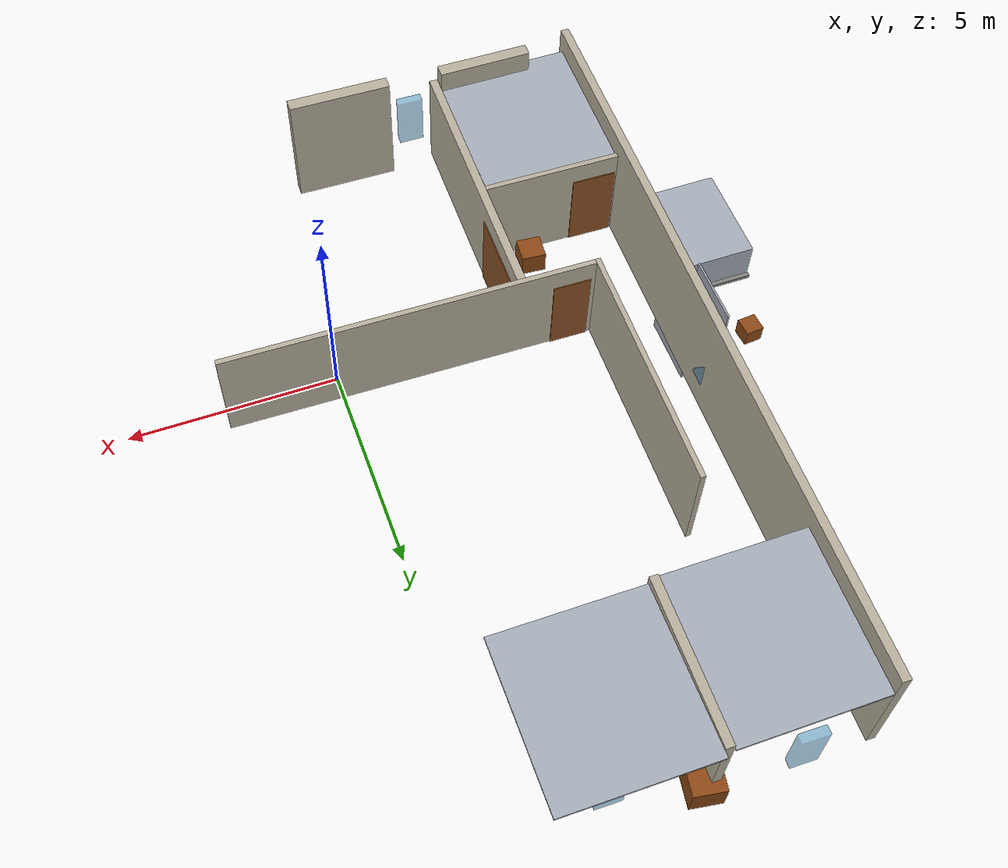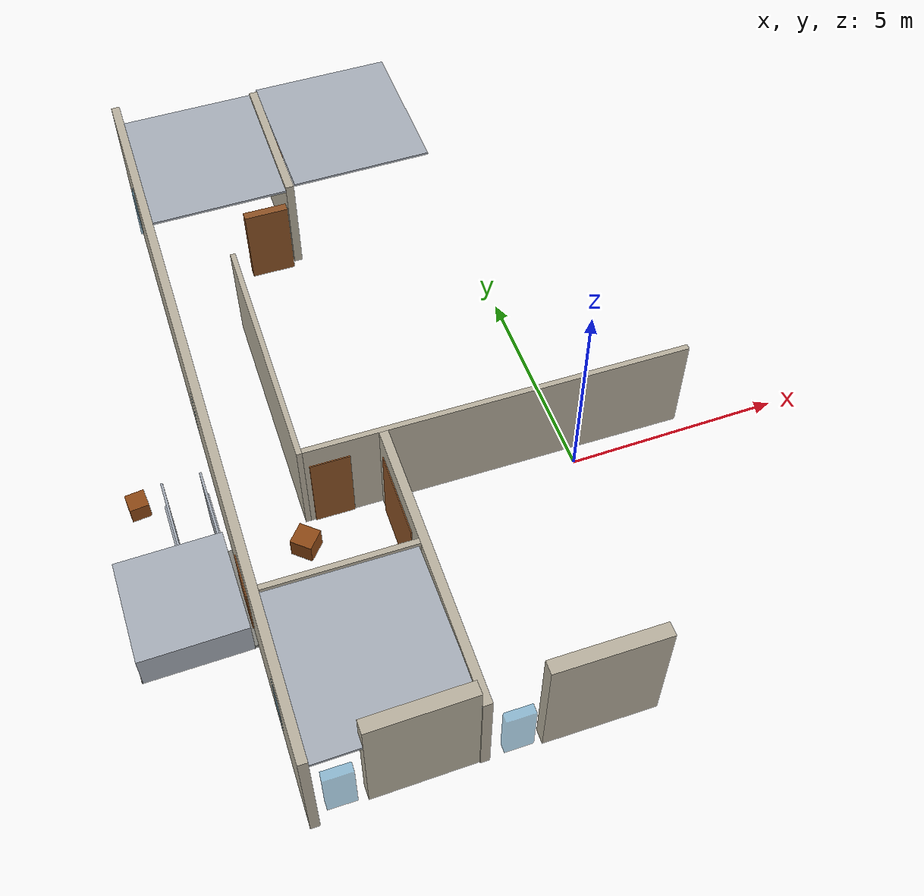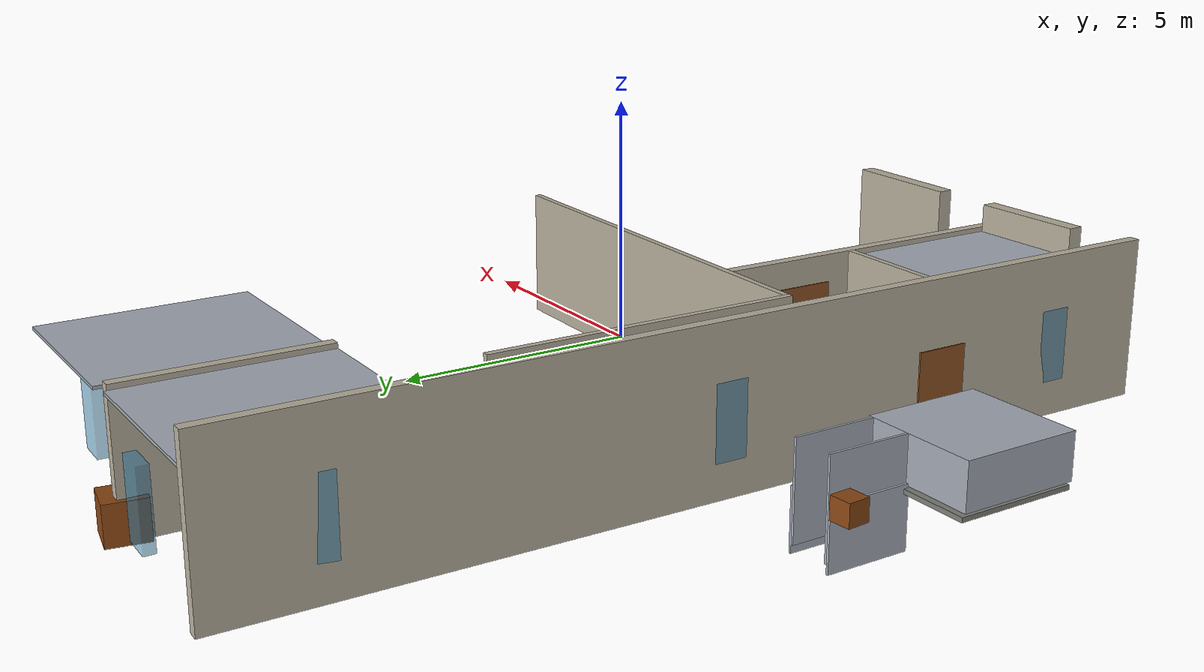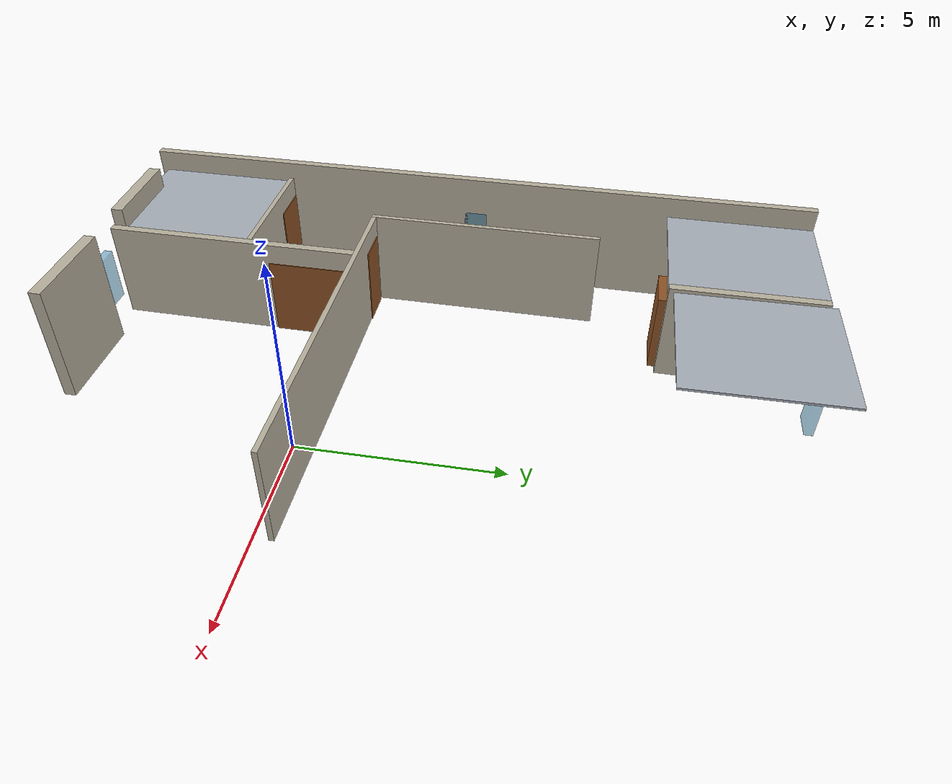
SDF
<sdf version="1.10">
 <world name="deltaseek_ifc_nominal_ers_d20_s1">
  <model name="ifc_05LeiFLbH7dBxLmOb3F9k5_83ceb4d6">
   <static>true</static>
   <pose>-5.55282702 0.543890736 1.0287 0 0 -0.015721382</pose>
   <link name="link">
    <collision name="collision">
     <geometry><box><size>0.896989976 0.174625 2.0574</size></box></geometry>
    </collision>
    <visual name="visual">
     <geometry><box><size>0.896989976 0.174625 2.0574</size></box></geometry>
     <material><ambient>0.55 0.32 0.14 1</ambient><diffuse>0.55 0.32 0.14 1</diffuse></material>
    </visual>
   </link>
  </model>
  <model name="ifc_05LeiFLbH7dBxLmOb3F9l5_79d11419">
   <static>true</static>
   <pose>-4.36399862 -0.789413286 1.0287 0 0 -1.58651771</pose>
   <link name="link">
    <collision name="collision"><geometry><box><size>1.9812 0.254 2.0574</size></box></geometry></collision>
    <visual name="visual">
     <geometry><box><size>1.9812 0.254 2.0574</size></box></geometry>
     <material><ambient>0.55 0.32 0.14 1</ambient><diffuse>0.55 0.32 0.14 1</diffuse></material>
    </visual>
   </link>
  </model>
  <model name="ifc_0KvanlNQrCphrCb4tAxX_i_1dc17cf0">
   <static>true</static>
   <pose>-4.20815132 10.0392629 1.2954 0 0 -1.58311292</pose>
   <link name="link">
    <collision name="collision"><geometry><box><size>3.685307 0.2032 2.5908</size></box></geometry></collision>
    <visual name="visual">
     <geometry><box><size>3.685307 0.2032 2.5908</size></box></geometry>
     <material><ambient>0.72 0.69 0.62 1</ambient><diffuse>0.72 0.69 0.62 1</diffuse></material>
    </visual>
   </link>
  </model>
  <model name="ifc_0KvanlNQrCphrCb4tAxkC2_9b38d0d1">
   <static>true</static>
   <pose>-4.39541128 -2.78733366 1.2954 0 0 -1.58651771</pose>
   <link name="link">
    <collision name="collision"><geometry><box><size>6.50140961 0.2032 2.5908</size></box></geometry></collision>
    <visual name="visual">
     <geometry><box><size>6.50140961 0.2032 2.5908</size></box></geometry>
     <material><ambient>0.72 0.69 0.62 1</ambient><diffuse>0.72 0.69 0.62 1</diffuse></material>
    </visual>
   </link>
  </model>
  <model name="ifc_0KvanlNQrCphrCb4tAxkhO_549faddc">
   <static>true</static>
   <pose>-1.7069162 0.483422723 1.2954 0 0 -0.015721382</pose>
   <link name="link">
    <collision name="collision"><geometry><box><size>8.8135473 0.123825 2.5908</size></box></geometry></collision>
    <visual name="visual">
     <geometry><box><size>8.8135473 0.123825 2.5908</size></box></geometry>
     <material><ambient>0.72 0.69 0.62 1</ambient><diffuse>0.72 0.69 0.62 1</diffuse></material>
    </visual>
   </link>
  </model>
  <model name="ifc_0KvanlNQrCphrCb4tAxklk_9cbd1854">
   <static>true</static>
   <pose>-6.12889309 3.48937198 1.2954 0 0 -1.58651771</pose>
   <link name="link">
    <collision name="collision">
     <geometry><box><size>5.99594713 0.123825 2.5908</size></box></geometry>
    </collision>
    <visual name="visual">
     <geometry><box><size>5.99594713 0.123825 2.5908</size></box></geometry>
     <material><ambient>0.72 0.69 0.62 1</ambient><diffuse>0.72 0.69 0.62 1</diffuse></material>
    </visual>
   </link>
  </model>
  <model name="ifc_0KvanlNQrCphrCb4tAxkqw_afb182ba">
   <static>true</static>
   <pose>-5.69525598 -5.85825521 1.524 0 0 3.14159265</pose>
   <link name="link">
    <collision name="collision"><geometry><box><size>2.286 0.3048 3.048</size></box></geometry></collision>
    <visual name="visual">
     <geometry><box><size>2.286 0.3048 3.048</size></box></geometry>
     <material><ambient>0.72 0.69 0.62 1</ambient><diffuse>0.72 0.69 0.62 1</diffuse></material>
    </visual>
   </link>
  </model>
  <model name="ifc_0KvanlNQrCphrCb4tAxkta_85419f7b">
   <static>true</static>
   <pose>-1.99850303 -5.93640721 1.524 0 0 3.12587127</pose>
   <link name="link">
    <collision name="collision"><geometry><box><size>2.4892 0.3048 3.048</size></box></geometry></collision>
    <visual name="visual">
     <geometry><box><size>2.4892 0.3048 3.048</size></box></geometry>
     <material><ambient>0.72 0.69 0.62 1</ambient><diffuse>0.72 0.69 0.62 1</diffuse></material>
    </visual>
   </link>
  </model>
  <model name="ifc_1abtvTofT8EB1v01F0DlAk_0605fd5f">
   <static>true</static>
   <pose>-7.82387714 2.87308504 1.524 0 0 -1.58651771</pose>
   <link name="link">
    <collision name="collision"><geometry><box><size>18.119452 0.2032 3.048</size></box></geometry></collision>
    <visual name="visual">
     <geometry><box><size>18.119452 0.2032 3.048</size></box></geometry>
     <material><ambient>0.72 0.69 0.62 1</ambient><diffuse>0.72 0.69 0.62 1</diffuse></material>
    </visual>
   </link>
  </model>
  <model name="ifc_1ccFJmoz1FOhtUmg41tu60_6c91f71c">
   <static>true</static>
   <pose>-9.26961815 -0.935102746 0.4572 0 0 0</pose>
   <link name="link">
    <collision name="collision">
     <geometry><box><size>2.36977306 2.4104698 0.9144</size></box></geometry>
    </collision>
    <visual name="visual">
     <geometry><box><size>2.36977306 2.4104698 0.9144</size></box></geometry>
     <material><ambient>0.65 0.68 0.72 1</ambient><diffuse>0.65 0.68 0.72 1</diffuse></material>
    </visual>
   </link>
  </model>
  <model name="ifc_1ccFJmoz1FOhtUmg41tuPp_e4dd8493">
   <static>true</static>
   <pose>-8.17624986 1.08822352 -0.050574106 0 0 0</pose>
   <link name="link">
    <collision name="collision"><geometry><box><size>0.0508 1.6764 1.92994821</size></box></geometry></collision>
    <visual name="visual">
     <geometry><box><size>0.0508 1.6764 1.92994821</size></box></geometry>
     <material><ambient>0.65 0.68 0.72 1</ambient><diffuse>0.65 0.68 0.72 1</diffuse></material>
    </visual>
   </link>
  </model>
  <model name="ifc_1ccFJmoz1FOhtUmg41tuPt_edc69a4a">
   <static>true</static>
   <pose>-9.03984986 1.08822352 -0.050574106 0 0 0</pose>
   <link name="link">
    <collision name="collision"><geometry><box><size>0.0508 1.6764 1.92994821</size></box></geometry></collision>
    <visual name="visual">
     <geometry><box><size>0.0508 1.6764 1.92994821</size></box></geometry>
     <material><ambient>0.65 0.68 0.72 1</ambient><diffuse>0.65 0.68 0.72 1</diffuse></material>
    </visual>
   </link>
  </model>
  <model name="ifc_1pMTU_U0n8Z8G77fSA9Y0a_966fd325">
   <static>true</static>
   <pose>-9.22295009 -0.853720591 -0.0762 0 0 0</pose>
   <link name="link">
    <collision name="collision">
     <geometry><box><size>2.51304755 2.42674524 0.0915907236</size></box></geometry>
    </collision>
    <visual name="visual">
     <geometry><box><size>2.51304755 2.42674524 0.0915907236</size></box></geometry>
     <material><ambient>0.5 0.5 0.48 1</ambient><diffuse>0.5 0.5 0.48 1</diffuse></material>
    </visual>
   </link>
  </model>
  <model name="ifc_1s7WttW8LF3wo3GFHzG43H_f564207d">
   <static>true</static>
   <pose>-2.03962735 11.5067767 1.341295 0 0 -0.014292658</pose>
   <link name="link">
    <collision name="collision"><geometry><box><size>0.6096 0.2032 1.3716</size></box></geometry></collision>
    <visual name="visual">
     <geometry><box><size>0.6096 0.2032 1.3716</size></box></geometry>
     <material><ambient>0.25 0.55 0.72 0.55</ambient><diffuse>0.25 0.55 0.72 0.55</diffuse></material>
    </visual>
   </link>
  </model>
  <model name="ifc_1s7WttW8LF3wo3GFHzG456_aa0284a8">
   <static>true</static>
   <pose>-5.95697896 12.0085077 1.33985 0 0 -0.014292658</pose>
   <link name="link">
    <collision name="collision"><geometry><box><size>0.6096 0.2032 1.3716</size></box></geometry></collision>
    <visual name="visual">
     <geometry><box><size>0.6096 0.2032 1.3716</size></box></geometry>
     <material><ambient>0.25 0.55 0.72 0.55</ambient><diffuse>0.25 0.55 0.72 0.55</diffuse></material>
    </visual>
   </link>
  </model>
  <model name="ifc_1s7WttW8LF3wo3GFHzG4AM_e522794f">
   <static>true</static>
   <pose>-7.71054225 10.0814566 1.33985 0.011002 -0.00317 1.37011595</pose>
   <link name="link">
    <collision name="collision"><geometry><box><size>0.6096 0.2032 1.3716</size></box></geometry></collision>
    <visual name="visual">
     <geometry><box><size>0.6096 0.2032 1.3716</size></box></geometry>
     <material><ambient>0.25 0.55 0.72 0.55</ambient><diffuse>0.25 0.55 0.72 0.55</diffuse></material>
    </visual>
   </link>
  </model>
  <model name="ifc_1s7WttW8LF3wo3GFHzG4Bb_dd38c917">
   <static>true</static>
   <pose>-7.82133147 3.03499637 1.33985 0 0 1.55507495</pose>
   <link name="link">
    <collision name="collision"><geometry><box><size>0.6096 0.2032 1.3716</size></box></geometry></collision>
    <visual name="visual">
     <geometry><box><size>0.6096 0.2032 1.3716</size></box></geometry>
     <material><ambient>0.25 0.55 0.72 0.55</ambient><diffuse>0.25 0.55 0.72 0.55</diffuse></material>
    </visual>
   </link>
  </model>
  <model name="ifc_1s7WttW8LF3wo3GFHzG7HH_9779102a">
   <static>true</static>
   <pose>-5.96247575 10.0640473 2.466975 0 0 0</pose>
   <link name="link">
    <collision name="collision">
     <geometry><box><size>3.35085356 3.73209376 0.05715</size></box></geometry>
    </collision>
    <visual name="visual">
     <geometry><box><size>3.35085356 3.73209376 0.05715</size></box></geometry>
     <material><ambient>0.65 0.68 0.72 1</ambient><diffuse>0.65 0.68 0.72 1</diffuse></material>
    </visual>
   </link>
  </model>
  <model name="ifc_1s7WttW8LF3wo3GFHzG7HP_220b1366">
   <static>true</static>
   <pose>-2.36216231 10.1648541 2.499644 0 0 0</pose>
   <link name="link">
    <collision name="collision">
     <geometry><box><size>3.4371587 3.72609334 0.05715</size></box></geometry>
    </collision>
    <visual name="visual">
     <geometry><box><size>3.4371587 3.72609334 0.05715</size></box></geometry>
     <material><ambient>0.65 0.68 0.72 1</ambient><diffuse>0.65 0.68 0.72 1</diffuse></material>
    </visual>
   </link>
  </model>
  <model name="ifc_1s7WttW8LF3wo3GFHzG7lv_43dbc6ef">
   <static>true</static>
   <pose>-6.19477879 -4.17001321 2.466975 0 0 0</pose>
   <link name="link">
    <collision name="collision">
     <geometry><box><size>3.33383177 3.681284 0.05715</size></box></geometry>
    </collision>
    <visual name="visual">
     <geometry><box><size>3.33383177 3.681284 0.05715</size></box></geometry>
     <material><ambient>0.65 0.68 0.72 1</ambient><diffuse>0.65 0.68 0.72 1</diffuse></material>
    </visual>
   </link>
  </model>
  <model name="ifc_1s7WttW8LF3wo3GFHzG7mz_89ff866e">
   <static>true</static>
   <pose>-7.93415848 -4.14107248 1.33985 0 0 1.55507495</pose>
   <link name="link">
    <collision name="collision"><geometry><box><size>0.6096 0.2032 1.3716</size></box></geometry></collision>
    <visual name="visual">
     <geometry><box><size>0.6096 0.2032 1.3716</size></box></geometry>
     <material><ambient>0.25 0.55 0.72 0.55</ambient><diffuse>0.25 0.55 0.72 0.55</diffuse></material>
    </visual>
   </link>
  </model>
  <model name="ifc_1s7WttW8LF3wo3GFHzG7nx_3797a564">
   <static>true</static>
   <pose>-7.38077728 -6.09311484 1.33985 0 0 3.12587127</pose>
   <link name="link">
    <collision name="collision"><geometry><box><size>0.6096 0.2032 1.3716</size></box></geometry></collision>
    <visual name="visual">
     <geometry><box><size>0.6096 0.2032 1.3716</size></box></geometry>
     <material><ambient>0.25 0.55 0.72 0.55</ambient><diffuse>0.25 0.55 0.72 0.55</diffuse></material>
    </visual>
   </link>
  </model>
  <model name="ifc_1s7WttW8LF3wo3GFHzG7uC_69bc2a8c">
   <static>true</static>
   <pose>-3.83878693 -6.14880441 1.33985 0 0 3.12587127</pose>
   <link name="link">
    <collision name="collision"><geometry><box><size>0.6096 0.2032 1.3716</size></box></geometry></collision>
    <visual name="visual">
     <geometry><box><size>0.6096 0.2032 1.3716</size></box></geometry>
     <material><ambient>0.25 0.55 0.72 0.55</ambient><diffuse>0.25 0.55 0.72 0.55</diffuse></material>
    </visual>
   </link>
  </model>
  <model name="ifc_2ASREFGDX0cRYE_pE9Hn_G_6beeccb4">
   <static>true</static>
   <pose>-9.09064986 1.08822352 -0.570987456 0 0 0</pose>
   <link name="link">
    <collision name="collision"><geometry><box><size>0.0508 1.6764 1.22763758</size></box></geometry></collision>
    <visual name="visual">
     <geometry><box><size>0.0508 1.6764 1.22763758</size></box></geometry>
     <material><ambient>0.65 0.68 0.72 1</ambient><diffuse>0.65 0.68 0.72 1</diffuse></material>
    </visual>
   </link>
  </model>
  <model name="ifc_2ASREFGDX0cRYE_pE9Hn_N_25b83375">
   <static>true</static>
   <pose>-8.12544986 1.08822352 -0.570987456 0 0 0</pose>
   <link name="link">
    <collision name="collision"><geometry><box><size>0.0508 1.6764 1.22763758</size></box></geometry></collision>
    <visual name="visual">
     <geometry><box><size>0.0508 1.6764 1.22763758</size></box></geometry>
     <material><ambient>0.65 0.68 0.72 1</ambient><diffuse>0.65 0.68 0.72 1</diffuse></material>
    </visual>
   </link>
  </model>
  <model name="ifc_38qgW_sXr868lESAj2QZHb_6d36238f">
   <static>true</static>
   <pose>-4.91753244 8.12900141 1.0287 0 0 -0.012316592</pose>
   <link name="link">
    <collision name="collision"><geometry><box><size>1.0668 0.2032 2.0574</size></box></geometry></collision>
    <visual name="visual">
     <geometry><box><size>1.0668 0.2032 2.0574</size></box></geometry>
     <material><ambient>0.55 0.32 0.14 1</ambient><diffuse>0.55 0.32 0.14 1</diffuse></material>
    </visual>
   </link>
  </model>
  <model name="ifc_38qgW_sXr868lESAj2QZQT_f5fd1d9a">
   <static>true</static>
   <pose>-7.22530923 -2.27655059 1.0287 0 0 3.12587127</pose>
   <link name="link">
    <collision name="collision"><geometry><box><size>1.0668 0.174625 2.0574</size></box></geometry></collision>
    <visual name="visual">
     <geometry><box><size>1.0668 0.174625 2.0574</size></box></geometry>
     <material><ambient>0.55 0.32 0.14 1</ambient><diffuse>0.55 0.32 0.14 1</diffuse></material>
    </visual>
   </link>
  </model>
  <model name="ifc_38qgW_sXr868lESAj2QZRq_fa50cff0">
   <static>true</static>
   <pose>-6.14637852 -2.29351427 1.2954 0 0 3.12587127</pose>
   <link name="link">
    <collision name="collision">
     <geometry><box><size>3.31382812 0.123825 2.5908</size></box></geometry>
    </collision>
    <visual name="visual">
     <geometry><box><size>3.31382812 0.123825 2.5908</size></box></geometry>
     <material><ambient>0.72 0.69 0.62 1</ambient><diffuse>0.72 0.69 0.62 1</diffuse></material>
    </visual>
   </link>
  </model>
  <model name="ifc_3xoURert943RLFHAzdmQBo_4312fe20">
   <static>true</static>
   <pose>-7.92228408 -1.41669727 1.1176 0 0 1.55507495</pose>
   <link name="link">
    <collision name="collision">
     <geometry><box><size>1.016 0.2016125 1.33548059</size></box></geometry>
    </collision>
    <visual name="visual">
     <geometry><box><size>1.016 0.2016125 1.33548059</size></box></geometry>
     <material><ambient>0.55 0.32 0.14 1</ambient><diffuse>0.55 0.32 0.14 1</diffuse></material>
    </visual>
   </link>
  </model>
  <model name="ifc_unexpected_000_6d986035">
   <static>true</static>
   <pose>-6.402956 -0.169136 0.2525 0 0 0.843963</pose>
   <link name="link">
    <collision name="collision"><geometry><box><size>0.505 0.505 0.505</size></box></geometry></collision>
    <visual name="visual">
     <geometry><box><size>0.505 0.505 0.505</size></box></geometry>
     <material><ambient>0.55 0.28 0.08 1</ambient><diffuse>0.55 0.28 0.08 1</diffuse></material>
    </visual>
   </link>
  </model>
  <model name="ifc_unexpected_001_c6700aaa">
   <static>true</static>
   <pose>-9.657227 2.003791 0.219 0 0 1.656814</pose>
   <link name="link">
    <collision name="collision"><geometry><box><size>0.438 0.438 0.438</size></box></geometry></collision>
    <visual name="visual">
     <geometry><box><size>0.438 0.438 0.438</size></box></geometry>
     <material><ambient>0.55 0.28 0.08 1</ambient><diffuse>0.55 0.28 0.08 1</diffuse></material>
    </visual>
   </link>
  </model>
  <model name="ifc_unexpected_004_75c418c5">
   <static>true</static>
   <pose>-5.500043 -1.773269 0.2935 0 0 3.064791</pose>
   <link name="link">
    <collision name="collision"><geometry><box><size>0.587 0.587 0.587</size></box></geometry></collision>
    <visual name="visual">
     <geometry><box><size>0.587 0.587 0.587</size></box></geometry>
     <material><ambient>0.55 0.28 0.08 1</ambient><diffuse>0.55 0.28 0.08 1</diffuse></material>
    </visual>
   </link>
  </model>
  <model name="ifc_unexpected_006_ec1509ad">
   <static>true</static>
   <pose>-4.03115 11.727951 0.366 0 0 1.416371</pose>
   <link name="link">
    <collision name="collision"><geometry><box><size>0.732 0.732 0.732</size></box></geometry></collision>
    <visual name="visual">
     <geometry><box><size>0.732 0.732 0.732</size></box></geometry>
     <material><ambient>0.55 0.28 0.08 1</ambient><diffuse>0.55 0.28 0.08 1</diffuse></material>
    </visual>
   </link>
  </model>
 </world>
</sdf>
